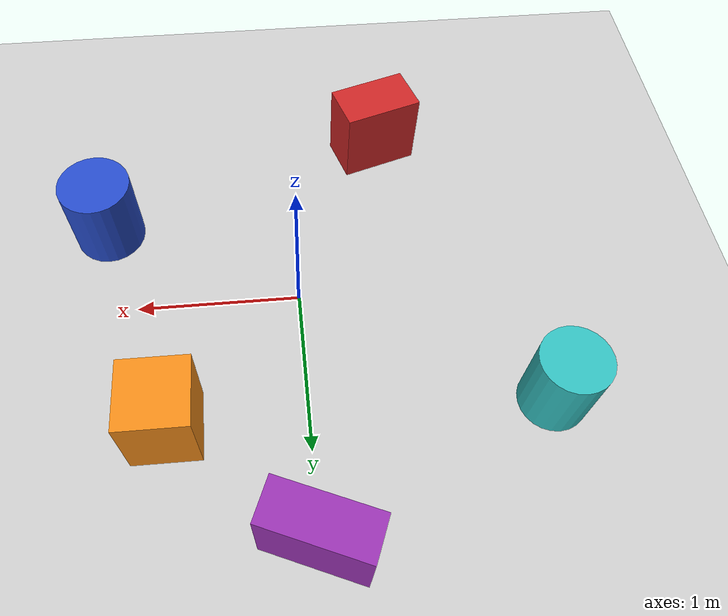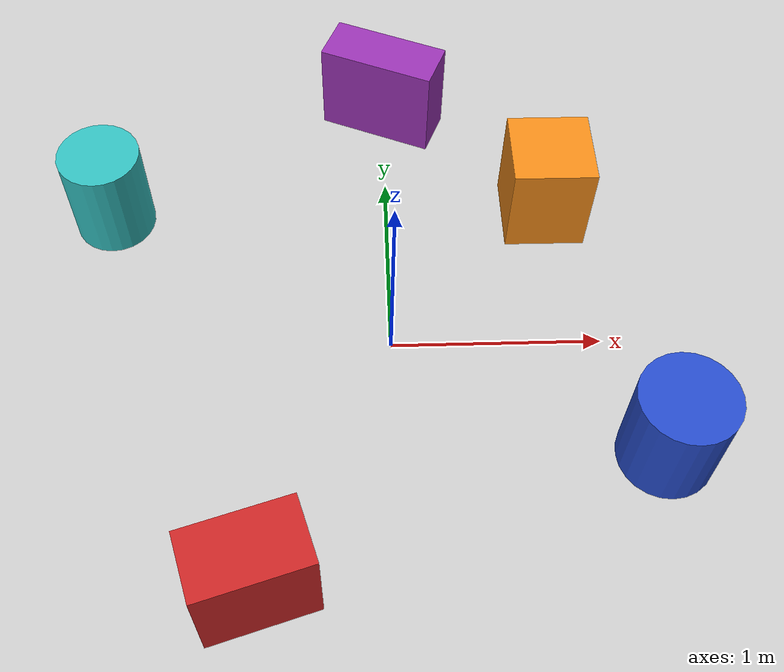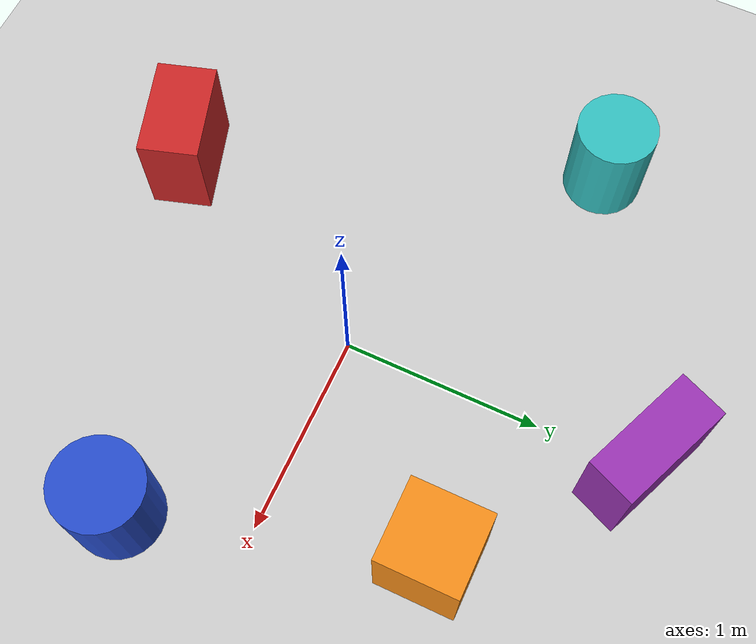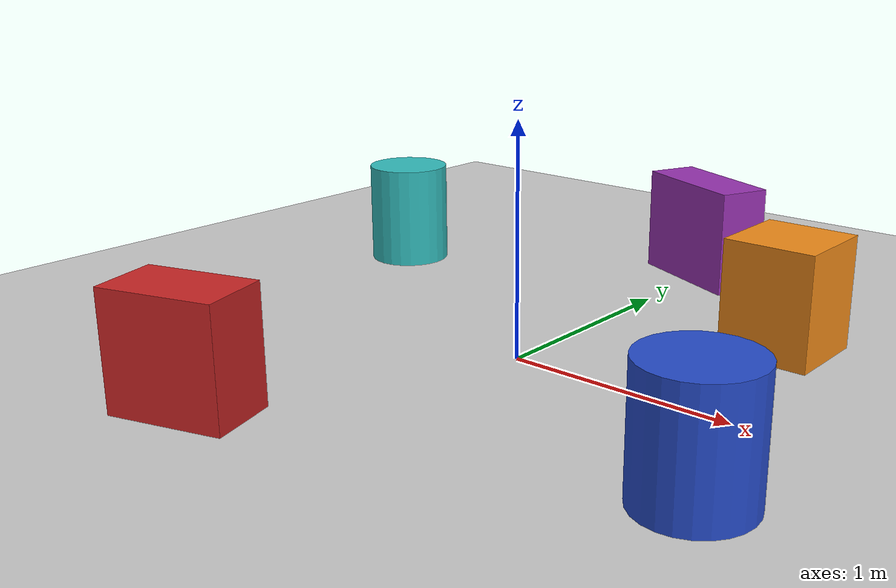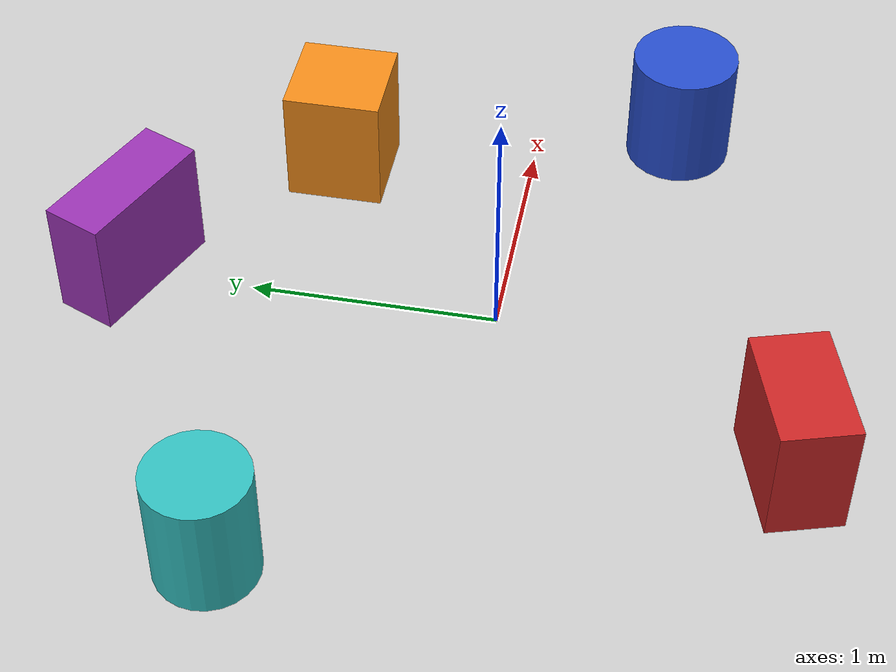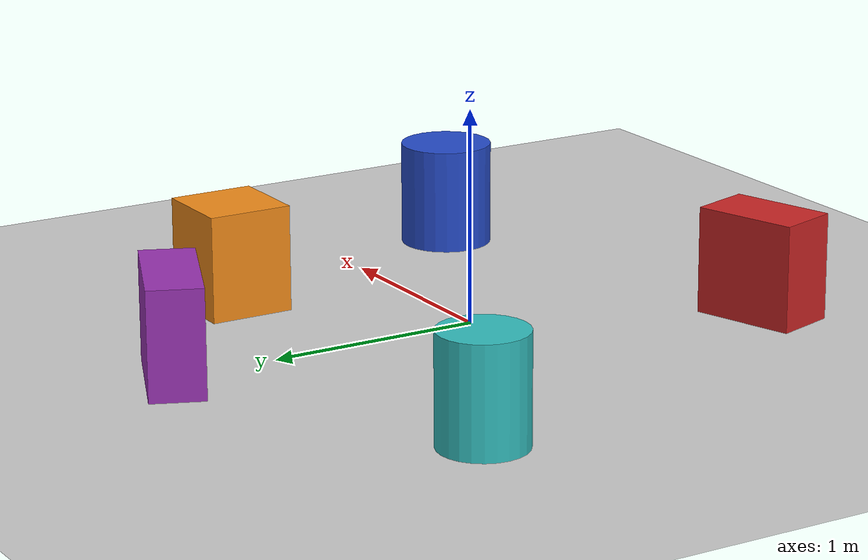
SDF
<sdf version="1.6">
 <world name="default">
  <include><uri>model://ground_plane</uri></include>
  <include><uri>model://sun</uri></include>
  <scene><shadows>false</shadows><grid>false</grid></scene>
  <physics type="ode">
   <real_time_update_rate>1000.0</real_time_update_rate>
   <max_step_size>0.001</max_step_size>
   <real_time_factor>1</real_time_factor>
   <ode>
    <solver>
     <type>quick</type>
     <iters>150</iters>
     <precon_iters>0</precon_iters>
     <sor>1.400000</sor>
     <use_dynamic_moi_rescaling>1</use_dynamic_moi_rescaling>
    </solver>
    <constraints>
     <cfm>0.00001</cfm>
     <erp>0.2</erp>
     <contact_max_correcting_vel>2000.000000</contact_max_correcting_vel>
     <contact_surface_layer>0.01000</contact_surface_layer>
    </constraints>
   </ode>
  </physics>
  <model name="obstacle_box_1">
   <static>1</static>
   <pose>0.8 0.8 0.25 0 0 0</pose>
   <link name="link">
    <collision name="collision"><geometry><box><size>0.4 0.4 0.5</size></box></geometry></collision>
    <visual name="visual">
     <geometry><box><size>0.4 0.4 0.5</size></box></geometry>
     <material>
      <script><uri>file://media/materials/scripts/gazebo.material</uri><name>Gazebo/Orange</name></script>
     </material>
    </visual>
   </link>
  </model>
  <model name="obstacle_box_2">
   <static>1</static>
   <pose>-0.6 -1.2 0.25 0 0 0.3</pose>
   <link name="link">
    <collision name="collision"><geometry><box><size>0.5 0.3 0.5</size></box></geometry></collision>
    <visual name="visual">
     <geometry><box><size>0.5 0.3 0.5</size></box></geometry>
     <material>
      <script><uri>file://media/materials/scripts/gazebo.material</uri><name>Gazebo/Red</name></script>
     </material>
    </visual>
   </link>
  </model>
  <model name="obstacle_cylinder_1">
   <static>1</static>
   <pose>1.2 -0.6 0.25 0 0 0</pose>
   <link name="link">
    <collision name="collision">
     <geometry><cylinder><radius>0.22</radius><length>0.5</length></cylinder></geometry>
    </collision>
    <visual name="visual">
     <geometry><cylinder><radius>0.22</radius><length>0.5</length></cylinder></geometry>
     <material>
      <script><uri>file://media/materials/scripts/gazebo.material</uri><name>Gazebo/Blue</name></script>
     </material>
    </visual>
   </link>
  </model>
  <model name="obstacle_cylinder_2">
   <static>1</static>
   <pose>-1.4 0.8 0.25 0 0 0</pose>
   <link name="link">
    <collision name="collision">
     <geometry><cylinder><radius>0.2</radius><length>0.5</length></cylinder></geometry>
    </collision>
    <visual name="visual">
     <geometry><cylinder><radius>0.2</radius><length>0.5</length></cylinder></geometry>
     <material>
      <script><uri>file://media/materials/scripts/gazebo.material</uri><name>Gazebo/Turquoise</name></script>
     </material>
    </visual>
   </link>
  </model>
  <model name="obstacle_box_3">
   <static>1</static>
   <pose>0.0 1.5 0.25 0 0 -0.4</pose>
   <link name="link">
    <collision name="collision"><geometry><box><size>0.6 0.25 0.5</size></box></geometry></collision>
    <visual name="visual">
     <geometry><box><size>0.6 0.25 0.5</size></box></geometry>
     <material>
      <script><uri>file://media/materials/scripts/gazebo.material</uri><name>Gazebo/Purple</name></script>
     </material>
    </visual>
   </link>
  </model>
 </world>
</sdf>
